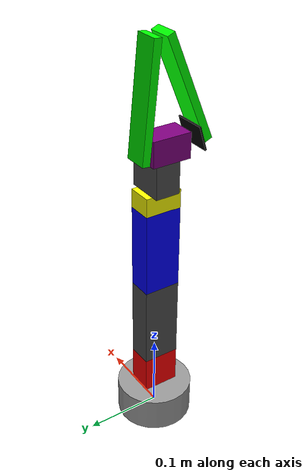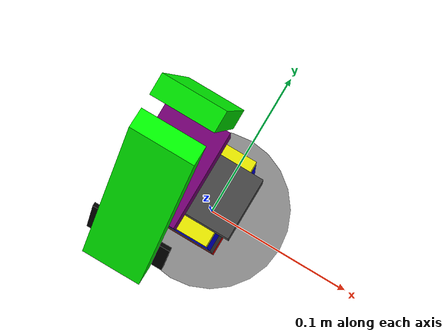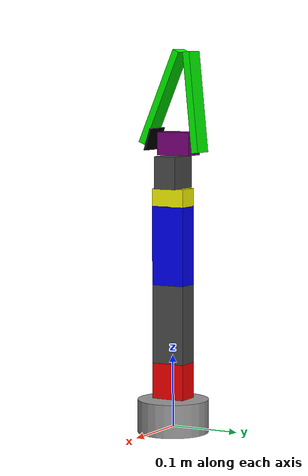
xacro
<?xml version="1.0"?>
<robot xmlns:xacro="http://www.ros.org/wiki/xacro" name="arm_6dof">
    <xacro:arg name="initial_positions_file" default="initial_positions.yaml" />

    <!-- Import arm_6dof urdf file -->
    <xacro:include filename="$(find meu_braco_description)/urdf/model.xacro" />

    <!-- Import control_xacro -->
    <xacro:include filename="arm_6dof.ros2_control.xacro" />

    <xacro:arm_6dof_ros2_control name="FakeSystem" initial_positions_file="$(arg initial_positions_file)"/>

</robot>

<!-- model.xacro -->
<!-- colcon build && source install/setup.bash && ros2 launch urdf_test display.launch.py -->

<robot name="arm_6dof" xmlns:xacro="http://ros.org/wiki/xacro">

  <xacro:arg name="is_ignition" default="true"/>

  <xacro:arg name="ros2_control_xacro_path" default="$(find meu_braco_description)/urdf/model_ros2_control.xacro" />

  <xacro:include filename="$(find meu_braco_description)/urdf/model_gazebo.xacro"/>
  <xacro:include filename="$(arg ros2_control_xacro_path)"/>

  <xacro:include filename="$(find meu_braco_description)/urdf/model_ros2_control.xacro"/>

  <xacro:property name="PI" value="3.14159265359"/>

  <!-- Macros e materiais reutilizáveis -->
  <xacro:macro name="default_inertial" params="mass">
    <inertial>
      <mass value="${mass}"/>
      <inertia ixx="1.0" ixy="0.0" ixz="0.0"
               iyy="1.0" iyz="0.0"
               izz="1.0" />
    </inertial>
  </xacro:macro>

  <material name="gray"><color rgba="0.6 0.6 0.6 1.0"/></material>
  <material name="red"><color rgba="1 0 0 1"/></material>
  <material name="dark_grey"><color rgba="0.3 0.3 0.3 1"/></material>
  <material name="blue"><color rgba="0 0 1 1"/></material>
  <material name="yellow"><color rgba="1 1 0 1"/></material>
  <material name="purple"><color rgba="0.5 0 0.5 1"/></material>
  <material name="green"><color rgba="0 1 0 1"/></material>
  <material name="black"><color rgba="0 0 0 1"/></material>

  <!-- Link base -->
  <link name="base_link">
    <xacro:default_inertial mass="5.0"/>
    <visual>
      <geometry>
        <cylinder radius="0.05" length="0.04655"/>
      </geometry>
      <origin xyz="0 0 0.015" rpy="0 0 0"/>
      <material name="gray"/>
    </visual>
    <collision>
      <geometry>
        <cylinder radius="0.05" length="0.04655"/>
      </geometry>
      <origin xyz="0 0 0" rpy="0 0 0"/>
    </collision>
  </link>

  <!-- Joint 1 -->
  <joint name="waist_joint" type="revolute">
    <parent link="base_link"/>
    <child link="shoulder_link"/>
    <origin xyz="0 0 0.030" rpy="0 0 0"/>
    <axis xyz="0 0 1"/>
    <limit lower="-1.714" upper="1.714" effort="2" velocity="1.0"/>
  </joint>

  <link name="shoulder_link">
    <xacro:default_inertial mass="0.1"/>
    <visual>
      <geometry>
        <box size="0.032 0.048 0.05"/>
      </geometry>
      <origin xyz="0 0 0.035" rpy="0 0 0"/>
      <material name="red"/>
    </visual>
    <collision>
      <geometry>
        <box size="0.032 0.048 0.05"/>
      </geometry>
      <origin xyz="0 0 0.035" rpy="0 0 0"/>
    </collision>
  </link>

  <!-- Joint 2 -->
  <joint name="shoulder_pitch_joint" type="revolute">
    <parent link="shoulder_link"/>
    <child link="upper_arm_link"/>
    <origin xyz="0 0 0.06" rpy="0 0 0"/>
    <axis xyz="0 1 0"/>
    <limit lower="-1.544" upper="0.085" effort="2" velocity="1.0"/>
  </joint>

  <link name="upper_arm_link">
    <xacro:default_inertial mass="0.1"/>
    <visual>
      <geometry>
        <box size="0.032 0.048 0.11"/>
      </geometry>
      <origin xyz="0 0 0.055" rpy="0 0 0"/>
      <material name="dark_grey"/>
    </visual>
    <collision>
      <geometry>
        <box size="0.032 0.048 0.11"/>
      </geometry>
      <origin xyz="0 0 0.055" rpy="0 0 0"/>
    </collision>
  </link>

  <!-- Joint 3 -->
   <joint name="elbow_pitch_joint" type="revolute">
    <parent link="upper_arm_link"/>
    <child link="forearm_link"/>
    <origin xyz="0 0 0.11" rpy="0 0 0"/>
    <axis xyz="0 1 0"/>
    <limit lower="-1.714" upper="0.220" effort="2" velocity="1.0"/>
  </joint>

  <link name="forearm_link">
    <xacro:default_inertial mass="0.1"/>
    <visual>
      <geometry>
        <box size="0.032 0.048 0.11"/>
      </geometry>
      <origin xyz="0 0 0.055" rpy="0 0 0"/>
      <material name="blue"/>
    </visual>
    <collision>
      <geometry>
        <box size="0.032 0.048 0.11"/>
      </geometry>
      <origin xyz="0 0 0.055" rpy="0 0 0"/>
    </collision>
  </link>

  <!-- Joint 4 -->
  <joint name="wrist_pitch_joint" type="revolute">
    <parent link="forearm_link"/>
    <child link="wrist_pitch_link"/>
    <origin xyz="0 0 0.108" rpy="0 0 0"/>
    <axis xyz="0 1 0"/>
    <limit lower="-1.579" upper="0.320" effort="2" velocity="1.0"/>
  </joint>

  <link name="wrist_pitch_link">
    <xacro:default_inertial mass="0.1"/>
    <visual>
      <geometry>
        <box size="0.032 0.048 0.025"/>
      </geometry>
      <origin xyz="0 0 0.014" rpy="0 0 0"/>
      <material name="yellow"/>
    </visual>
    <collision>
      <geometry>
        <box size="0.032 0.048 0.025"/>
      </geometry>
      <origin xyz="0 0 0.014" rpy="0 0 0"/>
    </collision>
  </link>

  <!-- Joint virado -->
  <joint name="wrist_joint" type="fixed">
    <parent link="wrist_pitch_link"/>
    <child link="wrist_roll_link"/>
    <origin xyz="0 0 0.030" rpy="0 0 0"/>
  </joint>

  <link name="wrist_roll_link">
    <xacro:default_inertial mass="0.1"/>
    <visual>
      <geometry>
        <box size="0.048 0.032 0.045"/>
      </geometry>
      <origin xyz="0 0 0.019" rpy="0 0 0"/>
      <material name="dark_grey"/>
    </visual>
    <collision>
      <geometry>
        <box size="0.048 0.032 0.045"/>
      </geometry>
      <origin xyz="0 0 0.019" rpy="0 0 0"/>
    </collision>
  </link>

  <!-- Joint 5 -->
  <joint name="gripper_base_joint" type="revolute">
    <parent link="wrist_roll_link"/>
    <child link="gripper_base_link"/>
    <origin xyz="-0.015 0 0.051" rpy="0 0 0"/>
    <axis xyz="0 0 1"/>
    <limit lower="-3.14" upper="3.14" effort="2" velocity="1.0"/>
  </joint>

  <link name="gripper_base_link">
    <xacro:default_inertial mass="0.1"/>
    <visual>
      <geometry>
        <box size="0.05 0.032 0.032"/>
      </geometry>
      <origin xyz="0 0 0.007" rpy="0 0 1.5708"/>
      <material name="purple"/>
    </visual>
    <collision>
      <geometry>
        <box size="0.05 0.032 0.032"/>
      </geometry>
      <origin xyz="0 0 0.007" rpy="0 0 1.5708"/>
    </collision>
  </link>

  <!-- Joint 6 -->
  <joint name="fixed_finger_joint" type="fixed">
    <parent link="gripper_base_link"/>
    <child link="fixed_finger_link"/>
    <origin xyz="0.00 0.031 0.025" rpy="0.10 0 0"/>
  </joint>

  <link name="fixed_finger_link">
    <xacro:default_inertial mass="0.1"/>
    <visual>
      <geometry>
        <box size="0.03 0.01 0.14"/>
      </geometry>
      <origin xyz="0 0 0.040" rpy="0 0 0"/>
      <material name="green"/>
    </visual>
    <collision>
      <geometry>
        <box size="0.03 0.01 0.14"/>
      </geometry>
      <origin xyz="0 0 0.040" rpy="0 0 0"/>
    </collision>
  </link>

  <!-- Joint 7 -->
  <joint name="gripper_finger_joint" type="revolute">
    <parent link="gripper_base_link"/>
    <child link="moving_finger_link"/>
    <origin xyz="0.000 -0.040 0.008" rpy="-0.3 0 0"/>
    <axis xyz="1 0 0"/>
    <limit lower="-0.025" upper="1.9" effort="2" velocity="1.0"/>
  </joint>

  <link name="moving_finger_link">
    <xacro:default_inertial mass="0.1"/>
    <visual>
      <geometry>
        <box size="0.040 0.002 0.032"/>
      </geometry>
      <origin xyz="0 0 0.005" rpy="0 0 0"/>
      <material name="black"/>
    </visual>
    <collision>
      <geometry>
        <box size="0.040 0.002 0.032"/>
      </geometry>
      <origin xyz="0 0 0.005" rpy="0 0 0"/>
    </collision>
  </link>

  <!-- Garra -->
  <joint name="finger" type="fixed">
    <parent link="moving_finger_link"/>
    <child link="finger_link"/>
    <origin xyz="0 0.001 0.040" rpy="-0.1 0 0"/>
  </joint>

  <link name="finger_link">
    <xacro:default_inertial mass="0.01"/>
    <visual>
      <geometry>
        <box size="0.03 0.01 0.14"/>
      </geometry>
      <origin xyz="0 -0.006 0.025" rpy="0 0 0"/>
      <material name="green"/>
    </visual>
    <collision>
      <geometry>
        <box size="0.03 0.01 0.14"/>
      </geometry>
      <origin xyz="0 -0.006 0.025" rpy="0 0 0"/>
    </collision>
  </link>

</robot>
